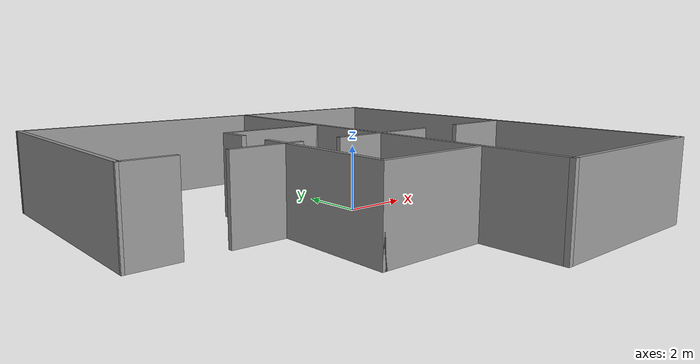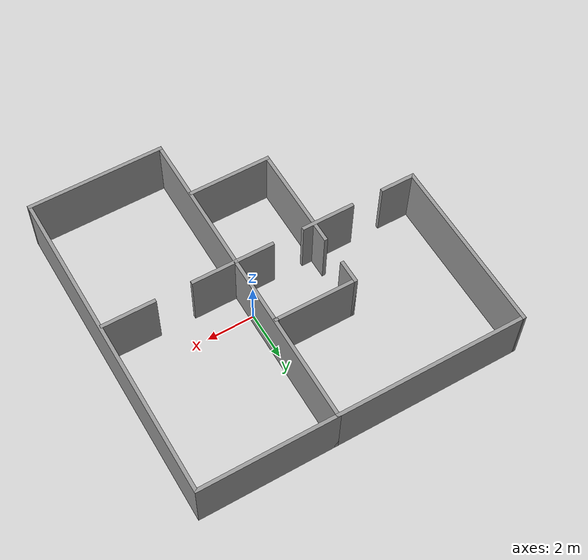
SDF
<?xml version='1.0'?>
<sdf version='1.7'>
  <model name='my_first_wall'>
    <pose>-1.04164 -0.521454 0 0 -0 0</pose>
    <link name='Wall_0'>
      <collision name='Wall_0_Collision'>
        <geometry>
          <box>
            <size>3.5 0.15 2.5</size>
          </box>
        </geometry>
        <pose>0 0 1.25 0 -0 0</pose>
      </collision>
      <visual name='Wall_0_Visual'>
        <pose>0 0 1.25 0 -0 0</pose>
        <geometry>
          <box>
            <size>3.5 0.15 2.5</size>
          </box>
        </geometry>
        <material>
          <script>
            <uri>file://media/materials/scripts/gazebo.material</uri>
            <name>Gazebo/Grey</name>
          </script>
          <ambient>1 1 1 1</ambient>
        </material>
        <meta>
          <layer>0</layer>
        </meta>
      </visual>
      <pose>1.24615 -0.605561 0 0 -0 3.14159</pose>
    </link>
    <link name='Wall_13'>
      <collision name='Wall_13_Collision'>
        <geometry>
          <box>
            <size>4.5 0.15 2.5</size>
          </box>
        </geometry>
        <pose>0 0 1.25 0 -0 0</pose>
      </collision>
      <visual name='Wall_13_Visual'>
        <pose>0 0 1.25 0 -0 0</pose>
        <geometry>
          <box>
            <size>4.5 0.15 2.5</size>
          </box>
        </geometry>
        <material>
          <script>
            <uri>file://media/materials/scripts/gazebo.material</uri>
            <name>Gazebo/Grey</name>
          </script>
          <ambient>1 1 1 1</ambient>
        </material>
        <meta>
          <layer>0</layer>
        </meta>
      </visual>
      <pose>-2.27699 -1.99178 0 0 -0 -1.5708</pose>
    </link>
    <link name='Wall_14'>
      <collision name='Wall_14_Collision'>
        <geometry>
          <box>
            <size>3.5 0.15 2.5</size>
          </box>
        </geometry>
        <pose>0 0 1.25 0 -0 0</pose>
      </collision>
      <visual name='Wall_14_Visual'>
        <pose>0 0 1.25 0 -0 0</pose>
        <geometry>
          <box>
            <size>3.5 0.15 2.5</size>
          </box>
        </geometry>
        <material>
          <script>
            <uri>file://media/materials/scripts/gazebo.material</uri>
            <name>Gazebo/Grey</name>
          </script>
          <ambient>1 1 1 1</ambient>
        </material>
        <meta>
          <layer>0</layer>
        </meta>
      </visual>
      <pose>-0.60199 -4.16678 0 0 -0 0</pose>
    </link>
    <link name='Wall_16'>
      <collision name='Wall_16_Collision'>
        <geometry>
          <box>
            <size>5.75 0.15 2.5</size>
          </box>
        </geometry>
        <pose>0 0 1.25 0 -0 0</pose>
      </collision>
      <visual name='Wall_16_Visual'>
        <pose>0 0 1.25 0 -0 0</pose>
        <geometry>
          <box>
            <size>5.75 0.15 2.5</size>
          </box>
        </geometry>
        <material>
          <script>
            <uri>file://media/materials/scripts/gazebo.material</uri>
            <name>Gazebo/Grey</name>
          </script>
          <ambient>1 1 1 1</ambient>
        </material>
        <meta>
          <layer>0</layer>
        </meta>
      </visual>
      <pose>3.92502 -6.67502 0 0 -0 3.14159</pose>
    </link>
    <link name='Wall_17'>
      <collision name='Wall_17_Collision'>
        <geometry>
          <box>
            <size>13.5 0.15 2.5</size>
          </box>
        </geometry>
        <pose>0 0 1.25 0 -0 0</pose>
      </collision>
      <visual name='Wall_17_Visual'>
        <pose>0 0 1.25 0 -0 0</pose>
        <geometry>
          <box>
            <size>13.5 0.15 2.5</size>
          </box>
        </geometry>
        <material>
          <script>
            <uri>file://media/materials/scripts/gazebo.material</uri>
            <name>Gazebo/Grey</name>
          </script>
          <ambient>1 1 1 1</ambient>
        </material>
        <meta>
          <layer>0</layer>
        </meta>
      </visual>
      <pose>1.12502 -2e-05 0 0 -0 1.5708</pose>
    </link>
    <link name='Wall_18'>
      <collision name='Wall_18_Collision'>
        <geometry>
          <box>
            <size>8 0.15 2.5</size>
          </box>
        </geometry>
        <pose>0 0 1.25 0 -0 0</pose>
      </collision>
      <visual name='Wall_18_Visual'>
        <pose>0 0 1.25 0 -0 0</pose>
        <geometry>
          <box>
            <size>8 0.15 2.5</size>
          </box>
        </geometry>
        <material>
          <script>
            <uri>file://media/materials/scripts/gazebo.material</uri>
            <name>Gazebo/Grey</name>
          </script>
          <ambient>1 1 1 1</ambient>
        </material>
        <meta>
          <layer>0</layer>
        </meta>
      </visual>
      <pose>-2.79998 6.67498 0 0 -0 3.14159</pose>
    </link>
    <link name='Wall_19'>
      <collision name='Wall_19_Collision'>
        <geometry>
          <box>
            <size>7.45699 0.15 2.5</size>
          </box>
        </geometry>
        <pose>0 0 1.25 0 -0 0</pose>
      </collision>
      <visual name='Wall_19_Visual'>
        <pose>0 0 1.25 0 -0 0</pose>
        <geometry>
          <box>
            <size>7.45699 0.15 2.5</size>
          </box>
        </geometry>
        <material>
          <script>
            <uri>file://media/materials/scripts/gazebo.material</uri>
            <name>Gazebo/Grey</name>
          </script>
          <ambient>1 1 1 1</ambient>
        </material>
        <meta>
          <layer>0</layer>
        </meta>
      </visual>
      <pose>-6.72295 3.02148 0 0 -0 -1.57024</pose>
    </link>
    <link name='Wall_2'>
      <collision name='Wall_2_Collision'>
        <geometry>
          <box>
            <size>2.25 0.15 2.5</size>
          </box>
        </geometry>
        <pose>0 0 1.25 0 -0 0</pose>
      </collision>
      <visual name='Wall_2_Visual'>
        <pose>0 0 1.25 0 -0 0</pose>
        <geometry>
          <box>
            <size>2.25 0.15 2.5</size>
          </box>
        </geometry>
        <material>
          <script>
            <uri>file://media/materials/scripts/gazebo.material</uri>
            <name>Gazebo/Grey</name>
          </script>
          <ambient>1 1 1 1</ambient>
        </material>
        <meta>
          <layer>0</layer>
        </meta>
      </visual>
      <pose>-2.88985 -0.618786 0 0 -0 3.14159</pose>
    </link>
    <link name='Wall_21'>
      <collision name='Wall_21_Collision'>
        <geometry>
          <box>
            <size>5.75 0.15 2.5</size>
          </box>
        </geometry>
        <pose>0 0 1.25 0 -0 0</pose>
      </collision>
      <visual name='Wall_21_Visual'>
        <pose>0 0 1.25 0 -0 0</pose>
        <geometry>
          <box>
            <size>5.75 0.15 2.5</size>
          </box>
        </geometry>
        <material>
          <script>
            <uri>file://media/materials/scripts/gazebo.material</uri>
            <name>Gazebo/Grey</name>
          </script>
          <ambient>1 1 1 1</ambient>
        </material>
        <meta>
          <layer>0</layer>
        </meta>
      </visual>
      <pose>3.92502 6.67498 0 0 -0 0</pose>
    </link>
    <link name='Wall_22'>
      <collision name='Wall_22_Collision'>
        <geometry>
          <box>
            <size>13.5 0.15 2.5</size>
          </box>
        </geometry>
        <pose>0 0 1.25 0 -0 0</pose>
      </collision>
      <visual name='Wall_22_Visual'>
        <pose>0 0 1.25 0 -0 0</pose>
        <geometry>
          <box>
            <size>13.5 0.15 2.5</size>
          </box>
        </geometry>
        <material>
          <script>
            <uri>file://media/materials/scripts/gazebo.material</uri>
            <name>Gazebo/Grey</name>
          </script>
          <ambient>1 1 1 1</ambient>
        </material>
        <meta>
          <layer>0</layer>
        </meta>
      </visual>
      <pose>6.72502 -2e-05 0 0 -0 -1.5708</pose>
    </link>
    <link name='Wall_31'>
      <collision name='Wall_31_Collision'>
        <geometry>
          <box>
            <size>1 0.15 2.5</size>
          </box>
        </geometry>
        <pose>0 0 1.25 0 -0 0</pose>
      </collision>
      <visual name='Wall_31_Visual'>
        <pose>0 0 1.25 0 -0 0</pose>
        <geometry>
          <box>
            <size>1 0.15 2.5</size>
          </box>
        </geometry>
        <material>
          <script>
            <uri>file://media/materials/scripts/gazebo.material</uri>
            <name>Gazebo/Grey</name>
          </script>
          <ambient>1 1 1 1</ambient>
        </material>
        <meta>
          <layer>0</layer>
        </meta>
      </visual>
      <pose>-2.28178 1.87073 0 0 -0 1.5708</pose>
    </link>
    <link name='Wall_32'>
      <collision name='Wall_32_Collision'>
        <geometry>
          <box>
            <size>3.5 0.15 2.5</size>
          </box>
        </geometry>
        <pose>0 0 1.25 0 -0 0</pose>
      </collision>
      <visual name='Wall_32_Visual'>
        <pose>0 0 1.25 0 -0 0</pose>
        <geometry>
          <box>
            <size>3.5 0.15 2.5</size>
          </box>
        </geometry>
        <material>
          <script>
            <uri>file://media/materials/scripts/gazebo.material</uri>
            <name>Gazebo/Grey</name>
          </script>
          <ambient>1 1 1 1</ambient>
        </material>
        <meta>
          <layer>0</layer>
        </meta>
      </visual>
      <pose>-0.606779 2.29573 0 0 -0 0</pose>
    </link>
    <link name='Wall_33'>
      <collision name='Wall_33_Collision'>
        <geometry>
          <box>
            <size>0.16 0.15 2.5</size>
          </box>
        </geometry>
        <pose>0 0 1.25 0 -0 0</pose>
      </collision>
      <visual name='Wall_33_Visual'>
        <pose>0 0 1.25 0 -0 0</pose>
        <geometry>
          <box>
            <size>0.16 0.15 2.5</size>
          </box>
        </geometry>
        <material>
          <script>
            <uri>file://media/materials/scripts/gazebo.material</uri>
            <name>Gazebo/Grey</name>
          </script>
          <ambient>1 1 1 1</ambient>
        </material>
        <meta>
          <layer>0</layer>
        </meta>
      </visual>
      <pose>1.07322 2.29573 0 0 -0 0</pose>
    </link>
    <link name='Wall_4'>
      <collision name='Wall_4_Collision'>
        <geometry>
          <box>
            <size>1.5 0.15 2.5</size>
          </box>
        </geometry>
        <pose>0 0 1.25 0 -0 0</pose>
      </collision>
      <visual name='Wall_4_Visual'>
        <pose>0 0 1.25 0 -0 0</pose>
        <geometry>
          <box>
            <size>1.5 0.15 2.5</size>
          </box>
        </geometry>
        <material>
          <script>
            <uri>file://media/materials/scripts/gazebo.material</uri>
            <name>Gazebo/Grey</name>
          </script>
          <ambient>1 1 1 1</ambient>
        </material>
        <meta>
          <layer>0</layer>
        </meta>
      </visual>
      <pose>-6.04592 -0.632011 0 0 -0 3.14159</pose>
    </link>
    <link name='Wall_6'>
      <collision name='Wall_6_Collision'>
        <geometry>
          <box>
            <size>2.25 0.15 2.5</size>
          </box>
        </geometry>
        <pose>0 0 1.25 0 -0 0</pose>
      </collision>
      <visual name='Wall_6_Visual'>
        <pose>0 0 1.25 0 -0 0</pose>
        <geometry>
          <box>
            <size>2.25 0.15 2.5</size>
          </box>
        </geometry>
        <material>
          <script>
            <uri>file://media/materials/scripts/gazebo.material</uri>
            <name>Gazebo/Grey</name>
          </script>
          <ambient>1 1 1 1</ambient>
        </material>
        <meta>
          <layer>0</layer>
        </meta>
      </visual>
      <pose>5.59151 -0.601207 0 0 -0 0</pose>
    </link>
    <static>1</static>
  </model>
</sdf>
